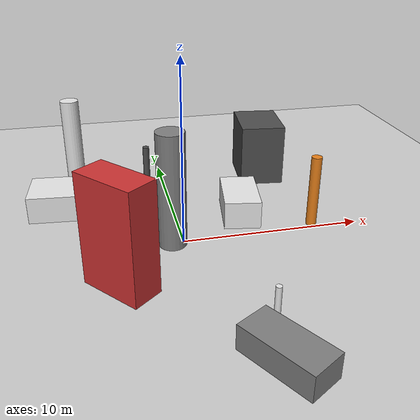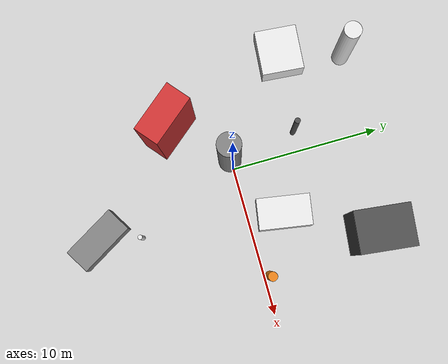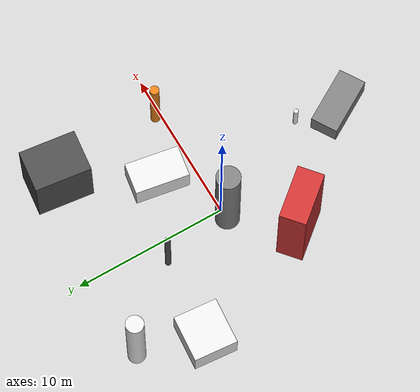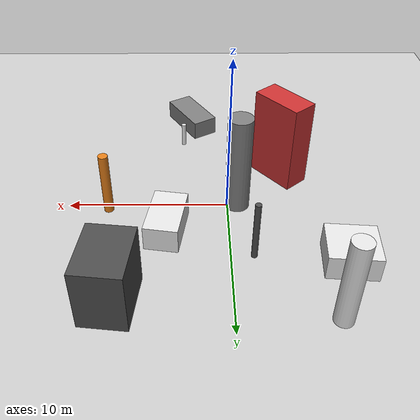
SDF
<?xml version='1.0'?>
<sdf version='1.6'>
  <world name='default'>
    <!-- Sun light -->
    <light name='sun' type='directional'>
      <cast_shadows>1</cast_shadows>
      <pose>0 0 10 0 0 0</pose>
      <diffuse>0.8 0.8 0.8 1</diffuse>
      <specular>0.2 0.2 0.2 1</specular>
      <attenuation>
        <range>1000</range>
        <constant>0.9</constant>
        <linear>0.01</linear>
        <quadratic>0.001</quadratic>
      </attenuation>
      <direction>-0.5 0.1 -0.9</direction>
    </light>

    <!-- Ground plane -->
    <model name='ground_plane'>
      <static>1</static>
      <link name='link'>
        <collision name='collision'>
          <geometry>
            <plane>
              <normal>0 0 1</normal>
              <size>100 100</size>
            </plane>
          </geometry>
          <surface>
            <contact>
              <collide_bitmask>65535</collide_bitmask>
              <ode/>
            </contact>
            <friction>
              <ode>
                <mu>100</mu>
                <mu2>50</mu2>
              </ode>
              <torsional><ode/></torsional>
            </friction>
            <bounce/>
          </surface>
          <max_contacts>10</max_contacts>
        </collision>
        <visual name='visual'>
          <cast_shadows>0</cast_shadows>
          <geometry>
            <plane>
              <normal>0 0 1</normal>
              <size>100 100</size>
            </plane>
          </geometry>
          <material>
            <script>
              <uri>file://media/materials/scripts/gazebo.material</uri>
              <n>Gazebo/Grey</n>
            </script>
          </material>
        </visual>
      </link>
    </model>

    <!-- Environment -->
    <magnetic_field>6e-06 2.3e-05 -4.2e-05</magnetic_field>
    <atmosphere type='adiabatic'/>
    <physics name='default_physics' default='0' type='ode'>
      <gravity>0 0 -9.8</gravity>
      <max_step_size>0.004</max_step_size>
      <real_time_factor>1</real_time_factor>
      <real_time_update_rate>250</real_time_update_rate>
    </physics>
    <scene>
      <ambient>0.4 0.4 0.4 1</ambient>
      <background>0.7 0.7 0.7 1</background>
      <shadows>1</shadows>
    </scene>
    <wind/>
    <spherical_coordinates>
      <surface_model>EARTH_WGS84</surface_model>
      <latitude_deg>0</latitude_deg>
      <longitude_deg>0</longitude_deg>
      <elevation>0</elevation>
      <heading_deg>0</heading_deg>
    </spherical_coordinates>

    <!-- ============ OBSTACLES (10) ============ -->
    <model name='obs_00'>
      <static>1</static>
      <link name='link'>
        <visual name='visual'>
          <geometry>
            <cylinder>
              <radius>0.5620</radius>
              <length>5.5032</length>
            </cylinder>
          </geometry>
          <material>
            <script>
              <n>Gazebo/White</n>
              <uri>file://media/materials/scripts/gazebo.material</uri>
            </script>
            <ambient>0.9 0.9 0.9 1</ambient>
          </material>
        </visual>
        <collision name='collision'>
          <geometry>
            <cylinder>
              <radius>0.5620</radius>
              <length>5.5032</length>
            </cylinder>
          </geometry>
          <max_contacts>10</max_contacts>
          <surface>
            <contact><ode/></contact>
            <bounce/>
            <friction>
              <ode><mu>1</mu><mu2>1</mu2></ode>
              <torsional><ode/></torsional>
            </friction>
          </surface>
        </collision>
      </link>
      <pose>-5.5203 9.1152 2.7516 0 0 0.1582</pose>
    </model>

    <model name='obs_01'>
      <static>1</static>
      <link name='link'>
        <visual name='visual'>
          <geometry>
            <cylinder>
              <radius>0.2958</radius>
              <length>4.1093</length>
            </cylinder>
          </geometry>
          <material>
            <script>
              <n>Gazebo/Orange</n>
              <uri>file://media/materials/scripts/gazebo.material</uri>
            </script>
            <ambient>0.9 0.5 0.1 1</ambient>
          </material>
        </visual>
        <collision name='collision'>
          <geometry>
            <cylinder>
              <radius>0.2958</radius>
              <length>4.1093</length>
            </cylinder>
          </geometry>
          <max_contacts>10</max_contacts>
          <surface>
            <contact><ode/></contact>
            <bounce/>
            <friction>
              <ode><mu>1</mu><mu2>1</mu2></ode>
              <torsional><ode/></torsional>
            </friction>
          </surface>
        </collision>
      </link>
      <pose>7.4629 0.3820 2.0547 0 0 2.5670</pose>
    </model>

    <model name='obs_02'>
      <static>1</static>
      <link name='link'>
        <visual name='visual'>
          <geometry>
            <box>
              <size>3.4981 2.0647 1.5935</size>
            </box>
          </geometry>
          <material>
            <script>
              <n>Gazebo/White</n>
              <uri>file://media/materials/scripts/gazebo.material</uri>
            </script>
            <ambient>0.9 0.9 0.9 1</ambient>
          </material>
        </visual>
        <collision name='collision'>
          <geometry>
            <box>
              <size>3.4981 2.0647 1.5935</size>
            </box>
          </geometry>
          <max_contacts>10</max_contacts>
          <surface>
            <contact><ode/></contact>
            <bounce/>
            <friction>
              <ode><mu>1</mu><mu2>1</mu2></ode>
              <torsional><ode/></torsional>
            </friction>
          </surface>
        </collision>
      </link>
      <pose>3.7648 2.3648 0.7968 0 0 1.4077</pose>
    </model>

    <model name='obs_03'>
      <static>1</static>
      <link name='link'>
        <visual name='visual'>
          <geometry>
            <cylinder>
              <radius>0.1829</radius>
              <length>3.8241</length>
            </cylinder>
          </geometry>
          <material>
            <script>
              <n>Gazebo/DarkGrey</n>
              <uri>file://media/materials/scripts/gazebo.material</uri>
            </script>
            <ambient>0.3 0.3 0.3 1</ambient>
          </material>
        </visual>
        <collision name='collision'>
          <geometry>
            <cylinder>
              <radius>0.1829</radius>
              <length>3.8241</length>
            </cylinder>
          </geometry>
          <max_contacts>10</max_contacts>
          <surface>
            <contact><ode/></contact>
            <bounce/>
            <friction>
              <ode><mu>1</mu><mu2>1</mu2></ode>
              <torsional><ode/></torsional>
            </friction>
          </surface>
        </collision>
      </link>
      <pose>-1.3430 4.5330 1.9120 0 0 2.3412</pose>
    </model>

    <model name='obs_04'>
      <static>1</static>
      <link name='link'>
        <visual name='visual'>
          <geometry>
            <cylinder>
              <radius>0.1503</radius>
              <length>1.6363</length>
            </cylinder>
          </geometry>
          <material>
            <script>
              <n>Gazebo/White</n>
              <uri>file://media/materials/scripts/gazebo.material</uri>
            </script>
            <ambient>0.9 0.9 0.9 1</ambient>
          </material>
        </visual>
        <collision name='collision'>
          <geometry>
            <cylinder>
              <radius>0.1503</radius>
              <length>1.6363</length>
            </cylinder>
          </geometry>
          <max_contacts>10</max_contacts>
          <surface>
            <contact><ode/></contact>
            <bounce/>
            <friction>
              <ode><mu>1</mu><mu2>1</mu2></ode>
              <torsional><ode/></torsional>
            </friction>
          </surface>
        </collision>
      </link>
      <pose>2.8281 -7.0269 0.8181 0 0 1.7503</pose>
    </model>

    <model name='obs_05'>
      <static>1</static>
      <link name='link'>
        <visual name='visual'>
          <geometry>
            <box>
              <size>2.7314 3.6154 3.8117</size>
            </box>
          </geometry>
          <material>
            <script>
              <n>Gazebo/DarkGrey</n>
              <uri>file://media/materials/scripts/gazebo.material</uri>
            </script>
            <ambient>0.3 0.3 0.3 1</ambient>
          </material>
        </visual>
        <collision name='collision'>
          <geometry>
            <box>
              <size>2.7314 3.6154 3.8117</size>
            </box>
          </geometry>
          <max_contacts>10</max_contacts>
          <surface>
            <contact><ode/></contact>
            <bounce/>
            <friction>
              <ode><mu>1</mu><mu2>1</mu2></ode>
              <torsional><ode/></torsional>
            </friction>
          </surface>
        </collision>
      </link>
      <pose>6.5288 7.8412 1.9058 0 0 3.0259</pose>
    </model>

    <model name='obs_06'>
      <static>1</static>
      <link name='link'>
        <visual name='visual'>
          <geometry>
            <box>
              <size>3.8262 1.7717 1.2714</size>
            </box>
          </geometry>
          <material>
            <script>
              <n>Gazebo/Grey</n>
              <uri>file://media/materials/scripts/gazebo.material</uri>
            </script>
            <ambient>0.5 0.5 0.5 1</ambient>
          </material>
        </visual>
        <collision name='collision'>
          <geometry>
            <box>
              <size>3.8262 1.7717 1.2714</size>
            </box>
          </geometry>
          <max_contacts>10</max_contacts>
          <surface>
            <contact><ode/></contact>
            <bounce/>
            <friction>
              <ode><mu>1</mu><mu2>1</mu2></ode>
              <torsional><ode/></torsional>
            </friction>
          </surface>
        </collision>
      </link>
      <pose>2.2583 -9.7671 0.6357 0 0 2.1095</pose>
    </model>

    <model name='obs_07'>
      <static>1</static>
      <link name='link'>
        <visual name='visual'>
          <geometry>
            <cylinder>
              <radius>0.7641</radius>
              <length>6.3719</length>
            </cylinder>
          </geometry>
          <material>
            <script>
              <n>Gazebo/Grey</n>
              <uri>file://media/materials/scripts/gazebo.material</uri>
            </script>
            <ambient>0.5 0.5 0.5 1</ambient>
          </material>
        </visual>
        <collision name='collision'>
          <geometry>
            <cylinder>
              <radius>0.7641</radius>
              <length>6.3719</length>
            </cylinder>
          </geometry>
          <max_contacts>10</max_contacts>
          <surface>
            <contact><ode/></contact>
            <bounce/>
            <friction>
              <ode><mu>1</mu><mu2>1</mu2></ode>
              <torsional><ode/></torsional>
            </friction>
          </surface>
        </collision>
      </link>
      <pose>-0.6142 -0.0833 3.1860 0 0 2.6525</pose>
    </model>

    <model name='obs_08'>
      <static>1</static>
      <link name='link'>
        <visual name='visual'>
          <geometry>
            <box>
              <size>2.8001 3.0057 1.5701</size>
            </box>
          </geometry>
          <material>
            <script>
              <n>Gazebo/White</n>
              <uri>file://media/materials/scripts/gazebo.material</uri>
            </script>
            <ambient>0.9 0.9 0.9 1</ambient>
          </material>
        </visual>
        <collision name='collision'>
          <geometry>
            <box>
              <size>2.8001 3.0057 1.5701</size>
            </box>
          </geometry>
          <max_contacts>10</max_contacts>
          <surface>
            <contact><ode/></contact>
            <bounce/>
            <friction>
              <ode><mu>1</mu><mu2>1</mu2></ode>
              <torsional><ode/></torsional>
            </friction>
          </surface>
        </collision>
      </link>
      <pose>-6.6919 5.0286 0.7851 0 0 1.4864</pose>
    </model>

    <model name='obs_09'>
      <static>1</static>
      <link name='link'>
        <visual name='visual'>
          <geometry>
            <box>
              <size>1.6947 3.4046 5.8222</size>
            </box>
          </geometry>
          <material>
            <script>
              <n>Gazebo/Red</n>
              <uri>file://media/materials/scripts/gazebo.material</uri>
            </script>
            <ambient>0.8 0.2 0.2 1</ambient>
          </material>
        </visual>
        <collision name='collision'>
          <geometry>
            <box>
              <size>1.6947 3.4046 5.8222</size>
            </box>
          </geometry>
          <max_contacts>10</max_contacts>
          <surface>
            <contact><ode/></contact>
            <bounce/>
            <friction>
              <ode><mu>1</mu><mu2>1</mu2></ode>
              <torsional><ode/></torsional>
            </friction>
          </surface>
        </collision>
      </link>
      <pose>-3.5873 -3.3821 2.9111 0 0 0.6966</pose>
    </model>

    <!-- GUI camera -->
    <gui fullscreen='0'>
      <camera name='user_camera'>
        <pose>-15 0 18 0 0.85 0.15</pose>
        <view_controller>orbit</view_controller>
        <projection_type>perspective</projection_type>
      </camera>
    </gui>
  </world>
</sdf>
